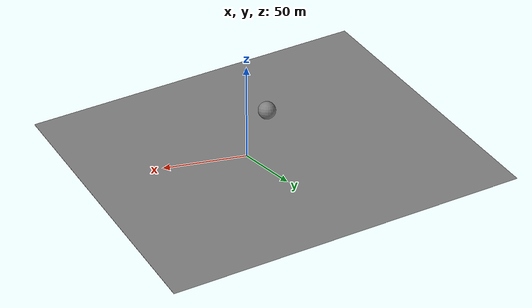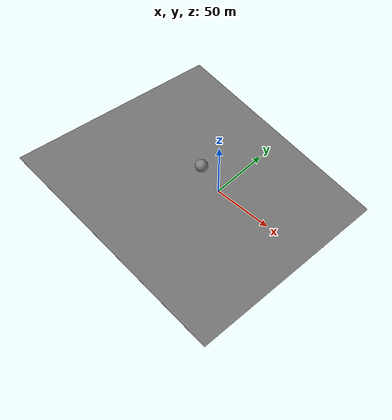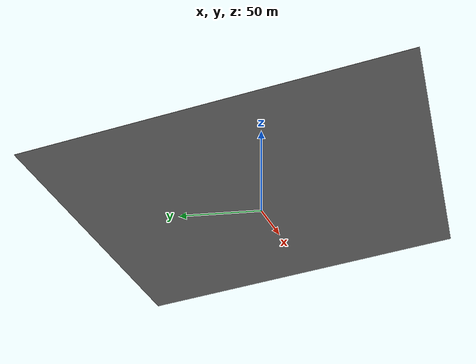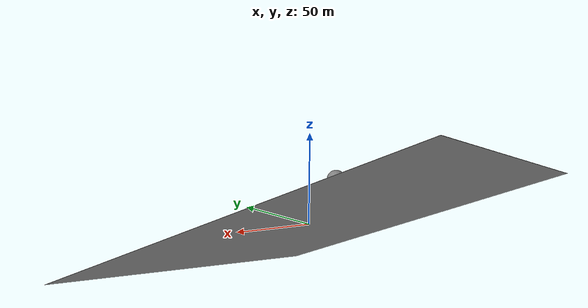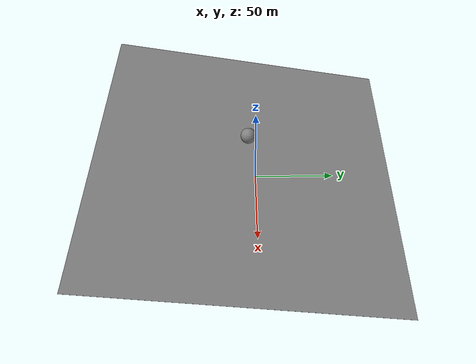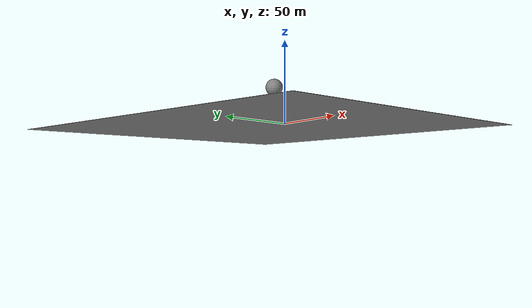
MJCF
<mujoco>
  <worldbody>
    <geom density="1000" type="plane" size="99.99999 100 0.9999999" pos="-14.26093 -4.07777 0" quat="-0.9924039 0.08682413 -0.08682413 0.00759613" priority="0" contype="1" conaffinity="1" group="0" condim="3" solmix="1" solref="0.02 1" solimp="0.9 0.95 0.001" margin="0" gap="0" friction="1 0.005 0.0001" fluidcoef="5 0.25 1.5 1 1" name="GameObject_0" />
    <body pos="-14.26091 -4.07777 0" quat="-1 0 0 0" name="Sphere Body_1">
      <geom density="1000" type="sphere" size="5" pos="0 0 23.2" quat="-1 0 0 0" group="0" condim="3" margin="0" gap="0" fluidcoef="5 0.25 1.5 1 1" name="Sphere_2" />
      <freejoint name="Free Joint_3" />
    </body>
  </worldbody>
  <compiler coordinate="local" />
  <option timestep="0.01999999" />
</mujoco>
